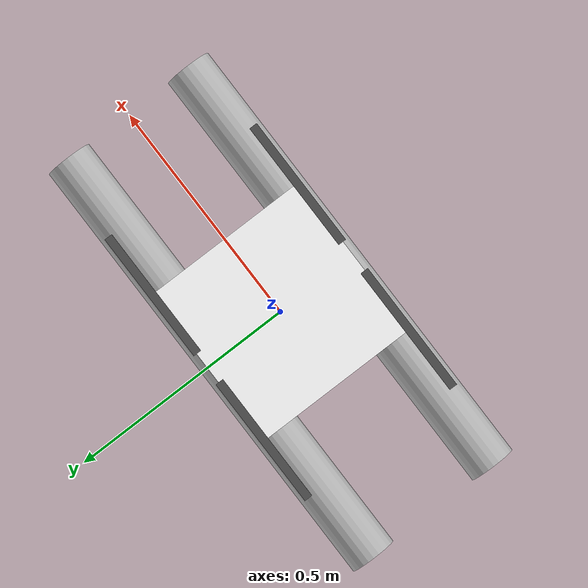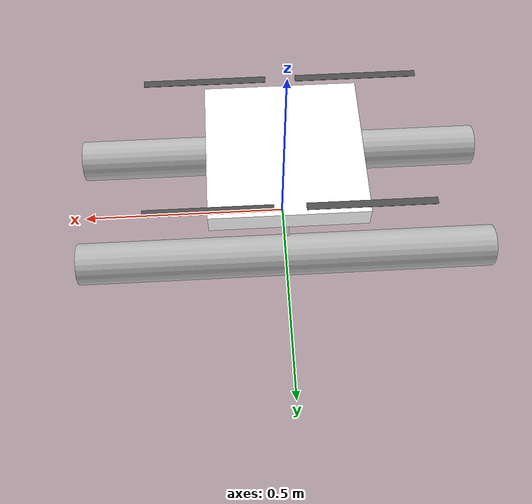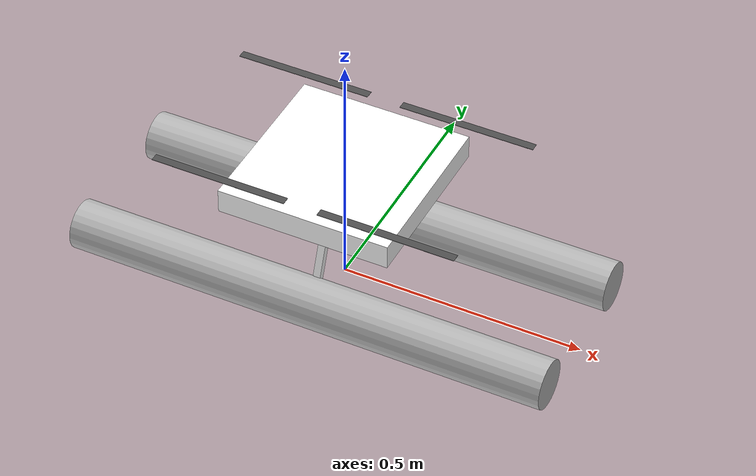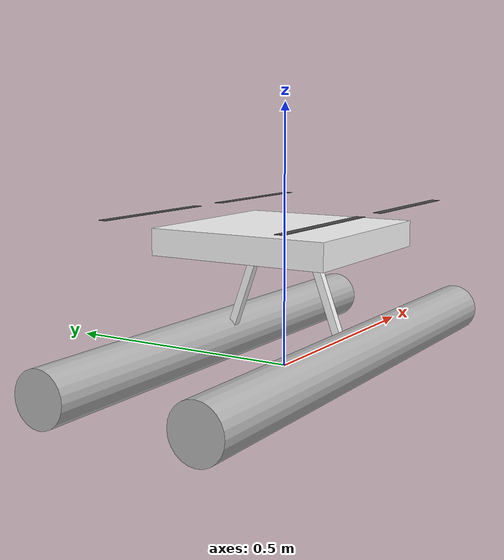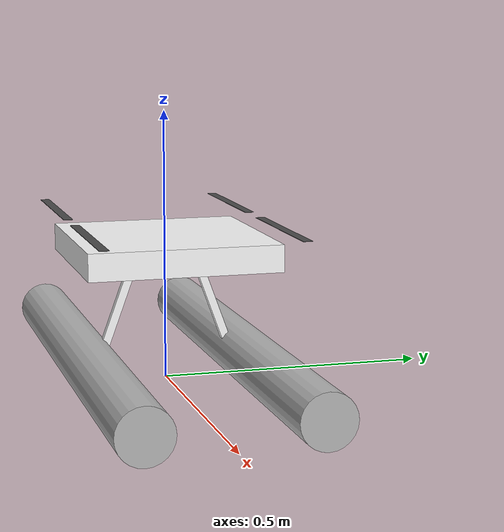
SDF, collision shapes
<?xml version="1.0" encoding="UTF-8"?>
<sdf version='1.9'>
  <model name='x500'>
    <pose>0 0 .24 0 0 0</pose>
    <self_collide>false</self_collide>
    <static>false</static>
    <link name="base_link">
      <inertial>
        <mass>3.0</mass>
        <inertia>
          <ixx>0.02166666666666667</ixx>
          <ixy>0</ixy>
          <ixz>0</ixz>
          <iyy>0.02166666666666667</iyy>
          <iyz>0</iyz>
          <izz>0.04000000000000001</izz>
        </inertia>
      </inertial>
      <gravity>true</gravity>
      <velocity_decay/>
      <visual name="base_link_visual">
        <pose>0 0 .025 0 0 3.141592654</pose>
        <geometry>
          <mesh>
            <scale>1 1 1</scale>
            <uri>model://x500_floating/meshes/NXP-HGD-CF.dae</uri>
          </mesh>
        </geometry>
      </visual>
      <visual name="5010_motor_base_0">
        <pose>0.174 0.174 .032 0 0 -.45</pose>
        <geometry>
          <mesh>
            <scale>1 1 1</scale>
            <uri>model://x500_floating/meshes/5010Base.dae</uri>
          </mesh>
        </geometry>
      </visual>
      <visual name="5010_motor_base_1">
        <pose>-0.174 0.174 .032 0 0 -.45</pose>
        <geometry>
          <mesh>
            <scale>1 1 1</scale>
            <uri>model://x500_floating/meshes/5010Base.dae</uri>
          </mesh>
        </geometry>
      </visual>
      <visual name="5010_motor_base_2">
        <pose>0.174 -0.174 .032 0 0 -.45</pose>
        <geometry>
          <mesh>
            <scale>1 1 1</scale>
            <uri>model://x500_floating/meshes/5010Base.dae</uri>
          </mesh>
        </geometry>
      </visual>
      <visual name="5010_motor_base_3">
        <pose>-0.174 -0.174 .032 0 0 -.45</pose>
        <geometry>
          <mesh>
            <scale>1 1 1</scale>
            <uri>model://x500_floating/meshes/5010Base.dae</uri>
          </mesh>
        </geometry>
      </visual>
      <visual name="NXP_FMUK66_FRONT">
        <pose>0.047 .001 .043 1 0 1.57</pose>
        <cast_shadows>false</cast_shadows>
        <geometry>
          <plane>
            <normal>0 0 1</normal>
            <size>.013 .007</size>
          </plane>
        </geometry>
        <material>
          <diffuse>1.0 1.0 1.0</diffuse>
          <specular>1.0 1.0 1.0</specular>
          <pbr>
            <metal>
              <albedo_map>model://x500_floating/materials/textures/nxp.png</albedo_map>
            </metal>
          </pbr>
        </material>
      </visual>
      <visual name="NXP_FMUK66_TOP">
        <pose>-0.023 0 .0515 0 0 -1.57</pose>
        <cast_shadows>false</cast_shadows>
        <geometry>
          <plane>
            <normal>0 0 1</normal>
            <size>.013 .007</size>
          </plane>
        </geometry>
        <material>
          <diffuse>1.0 1.0 1.0</diffuse>
          <specular>1.0 1.0 1.0</specular>
          <pbr>
            <metal>
              <albedo_map>model://x500_floating/materials/textures/nxp.png</albedo_map>
            </metal>
          </pbr>
        </material>
      </visual>
      <visual name="RDDRONE_FMUK66_TOP">
        <pose>-.03 0 .0515 0 0 -1.57</pose>
        <cast_shadows>false</cast_shadows>
        <geometry>
          <plane>
            <normal>0 0 1</normal>
            <size>.032 .0034</size>
          </plane>
        </geometry>
        <material>
          <diffuse>1.0 1.0 1.0</diffuse>
          <specular>1.0 1.0 1.0</specular>
          <pbr>
            <metal>
              <albedo_map>model://x500_floating/materials/textures/rd.png</albedo_map>
            </metal>
          </pbr>
        </material>
      </visual>
      <collision name="base_link_collision_0">
        <pose>0 0 .007 0 0 0</pose>
        <geometry>
          <box>
            <size>0.35355339059327373 0.35355339059327373 0.05</size>
          </box>
        </geometry>
        <surface>
          <contact>
            <ode>
              <min_depth>0.001</min_depth>
              <max_vel>0</max_vel>
            </ode>
          </contact>
          <friction>
            <ode/>
          </friction>
        </surface>
      </collision>
      <collision name="base_link_collision_1">
        <pose>0 -0.098 -.123 -0.35 0 0</pose>
        <geometry>
          <box>
            <size>0.015 0.015 0.21</size>
          </box>
        </geometry>
        <surface>
          <contact>
            <ode>
              <min_depth>0.001</min_depth>
              <max_vel>0</max_vel>
            </ode>
          </contact>
          <friction>
            <ode/>
          </friction>
        </surface>
      </collision>
      <collision name="base_link_collision_2">
        <pose>0 0.098 -.123 0.35 0 0</pose>
        <geometry>
          <box>
            <size>0.015 0.015 0.21</size>
          </box>
        </geometry>
        <surface>
          <contact>
            <ode>
              <min_depth>0.001</min_depth>
              <max_vel>0</max_vel>
            </ode>
          </contact>
          <friction>
            <ode/>
          </friction>
        </surface>
      </collision>
      <collision name="base_link_collision_3">
        <pose>0 -0.132 -.2195 0 0 0</pose>
        <geometry>
          <box>
            <size>0.25 0.015 0.015</size>
          </box>
        </geometry>
        <surface>
          <contact>
            <ode>
              <min_depth>0.001</min_depth>
              <max_vel>0</max_vel>
            </ode>
          </contact>
          <friction>
            <ode/>
          </friction>
        </surface>
      </collision>
      <collision name="base_link_collision_4">
        <pose>0 0.132 -.2195 0 0 0</pose>
        <geometry>
          <box>
            <size>0.25 0.015 0.015</size>
          </box>
        </geometry>
        <surface>
          <contact>
            <ode>
              <min_depth>0.001</min_depth>
              <max_vel>0</max_vel>
            </ode>
          </contact>
          <friction>
            <ode/>
          </friction>
        </surface>
      </collision>
      <sensor name="air_pressure_sensor" type="air_pressure">
        <always_on>1</always_on>
        <update_rate>50</update_rate>
        <air_pressure>
          <pressure>
            <noise type="gaussian">
              <mean>0</mean>
              <stddev>0.01</stddev>
            </noise>
          </pressure>
        </air_pressure>
      </sensor>
      <sensor name="imu_sensor" type="imu">
        <always_on>1</always_on>
        <update_rate>250</update_rate>
      </sensor>
    </link>
    <link name="buoyant_sausage_1">
      <pose>0 0.15 -0.2 0 1.57075 0</pose>
      <inertial>
        <mass>0.001</mass>
        <inertia>
          <ixx>0.02166666666666667</ixx>
          <ixy>0</ixy>
          <ixz>0</ixz>
          <iyy>0.02166666666666667</iyy>
          <iyz>0</iyz>
          <izz>0.04000000000000001</izz>
        </inertia>
        <density>240</density>
      </inertial>
      <gravity>true</gravity>
      <collision name="sausage_1_collision">
        <geometry>
          <cylinder>
            <radius>0.05</radius>
            <length>1</length>
          </cylinder>
        </geometry>
      </collision>
      <visual name="sausage_1_visual">
        <geometry>
          <cylinder>
            <radius>0.05</radius>
            <length>1</length>
          </cylinder>
        </geometry>
      </visual>
    </link>
    <joint name="sausage_1_to_drone" type="revolute">
      <parent>base_link</parent>
      <child>buoyant_sausage_1</child>
      <pose>0 0.15 -0.2 0 0 0</pose>
      <axis>
        <xyz>0 0 1</xyz>
        <limit>
          <lower>0</lower>
          <upper>0</upper>
        </limit>
        <dynamics>
          <spring_reference>0</spring_reference>
          <spring_stiffness>0</spring_stiffness>
        </dynamics>
      </axis>
    </joint>
    <link name="buoyant_sausage_2">
      <pose>0 -0.15 -0.2 0 1.57075 0</pose>
      <inertial>
        <mass>0.001</mass>
        <inertia>
          <ixx>0.02166666666666667</ixx>
          <ixy>0</ixy>
          <ixz>0</ixz>
          <iyy>0.02166666666666667</iyy>
          <iyz>0</iyz>
          <izz>0.04000000000000001</izz>
        </inertia>
        <density>240</density>
      </inertial>
      <gravity>true</gravity>
      <collision name="sausage_2_collision">
        <geometry>
          <cylinder>
            <radius>0.05</radius>
            <length>1</length>
          </cylinder>
        </geometry>
      </collision>
      <visual name="sausage_2_visual">
        <geometry>
          <cylinder>
            <radius>0.05</radius>
            <length>1</length>
          </cylinder>
        </geometry>
      </visual>
    </link>
    <joint name="sausage_2_to_drone" type="revolute">
      <parent>base_link</parent>
      <child>buoyant_sausage_2</child>
      <pose>0 -0.15 -0.2 0 0 0</pose>
      <axis>
        <xyz>0 0 1</xyz>
        <limit>
          <lower>0</lower>
          <upper>0</upper>
        </limit>
        <dynamics>
          <spring_reference>0</spring_reference>
          <spring_stiffness>0</spring_stiffness>
        </dynamics>
      </axis>
    </joint>
    <link name="rotor_0">
      <gravity>true</gravity>
      <self_collide>false</self_collide>
      <velocity_decay/>
      <pose>0.174 -0.174 0.06 0 0 0</pose>
      <inertial>
          <mass>0.016076923076923075</mass>
          <inertia>
            <ixx>3.8464910483993325e-07</ixx>
            <iyy>2.6115851691700804e-05</iyy>
            <izz>2.649858234714004e-05</izz>
          </inertia>
        </inertial>
      <visual name="rotor_0_visual">
        <pose>-0.022 -0.14638461538461536 -0.016 0 0 0</pose>
        <geometry>
          <mesh>
            <scale>0.8461538461538461 0.8461538461538461 0.8461538461538461</scale>
            <uri>model://x500_floating/meshes/1345_prop_ccw.stl</uri>
          </mesh>
        </geometry>
        <material>
          <script>
            <name>Gazebo/DarkGrey</name>
            <uri>file://media/materials/scripts/gazebo.material</uri>
          </script>
        </material>
      </visual>
      <visual name="rotor_0_visual_motor_bell">
        <pose>0 0 -.032 0 0 0</pose>
        <geometry>
          <mesh>
            <scale>1 1 1</scale>
            <uri>model://x500_floating/meshes/5010Bell.dae</uri>
          </mesh>
        </geometry>
      </visual>
      <collision name="rotor_0_collision">
        <pose>0 0 0 0 0 0 </pose>
        <geometry>
          <box>
            <size>0.2792307692307692 0.016923076923076923 0.0008461538461538462</size>
          </box>
        </geometry>
        <surface>
          <contact>
            <ode>
              <min_depth>0.001</min_depth>
              <max_vel>0</max_vel>
            </ode>
          </contact>
          <friction>
            <ode/>
          </friction>
        </surface>
      </collision>
    </link>
    <joint name="rotor_0_joint" type="revolute">
      <parent>base_link</parent>
      <child>rotor_0</child>
      <axis>
        <xyz>0 0 1</xyz>
        <limit>
          <lower>-1e+16</lower>
          <upper>1e+16</upper>
        </limit>
        <dynamics>
          <spring_reference>0</spring_reference>
          <spring_stiffness>0</spring_stiffness>
        </dynamics>
      </axis>
    </joint>
    <link name="rotor_1">
      <gravity>true</gravity>
      <self_collide>false</self_collide>
      <velocity_decay/>
      <pose>-0.174 0.174 0.06 0 0 0</pose>
      <inertial>
          <mass>0.016076923076923075</mass>
          <inertia>
            <ixx>3.8464910483993325e-07</ixx>
            <iyy>2.6115851691700804e-05</iyy>
            <izz>2.649858234714004e-05</izz>
          </inertia>
        </inertial>
      <visual name="rotor_1_visual">
        <pose>-0.022 -0.14638461538461536 -0.016 0 0 0</pose>
        <geometry>
          <mesh>
            <scale>0.8461538461538461 0.8461538461538461 0.8461538461538461</scale>
            <uri>model://x500_floating/meshes/1345_prop_ccw.stl</uri>
          </mesh>
        </geometry>
        <material>
          <script>
            <name>Gazebo/DarkGrey</name>
            <uri>file://media/materials/scripts/gazebo.material</uri>
          </script>
        </material>
      </visual>
      <visual name="rotor_1_visual_motor_top">
        <pose>0 0 -.032 0 0 0</pose>
        <geometry>
          <mesh>
            <scale>1 1 1</scale>
            <uri>model://x500_floating/meshes/5010Bell.dae</uri>
          </mesh>
        </geometry>
      </visual>
      <collision name="rotor_1_collision">
        <pose>0 0 0 0 0 0 </pose>
        <geometry>
          <box>
            <size>0.2792307692307692 0.016923076923076923 0.0008461538461538462</size>
          </box>
        </geometry>
        <surface>
          <contact>
            <ode>
              <min_depth>0.001</min_depth>
              <max_vel>0</max_vel>
            </ode>
          </contact>
          <friction>
            <ode/>
          </friction>
        </surface>
      </collision>
    </link>
    <joint name="rotor_1_joint" type="revolute">
      <parent>base_link</parent>
      <child>rotor_1</child>
      <axis>
        <xyz>0 0 1</xyz>
        <limit>
          <lower>-1e+16</lower>
          <upper>1e+16</upper>
        </limit>
        <dynamics>
          <spring_reference>0</spring_reference>
          <spring_stiffness>0</spring_stiffness>
        </dynamics>
      </axis>
    </joint>
    <link name="rotor_2">
      <gravity>true</gravity>
      <self_collide>false</self_collide>
      <velocity_decay/>
      <pose>0.174 0.174 0.06 0 0 0</pose>
      <inertial>
          <mass>0.016076923076923075</mass>
          <inertia>
            <ixx>3.8464910483993325e-07</ixx>
            <iyy>2.6115851691700804e-05</iyy>
            <izz>2.649858234714004e-05</izz>
          </inertia>
        </inertial>
      <visual name="rotor_2_visual">
        <pose>-0.022 -0.14638461538461536 -0.016 0 0 0</pose>
        <geometry>
          <mesh>
            <scale>0.8461538461538461 0.8461538461538461 0.8461538461538461</scale>
            <uri>model://x500_floating/meshes/1345_prop_cw.stl</uri>
          </mesh>
        </geometry>
        <material>
          <script>
            <name>Gazebo/DarkGrey</name>
            <uri>file://media/materials/scripts/gazebo.material</uri>
          </script>
        </material>
      </visual>
      <visual name="rotor_2_visual_motor_top">
        <pose>0 0 -.032 0 0 0</pose>
        <geometry>
          <mesh>
            <scale>1 1 1</scale>
            <uri>model://x500_floating/meshes/5010Bell.dae</uri>
          </mesh>
        </geometry>
      </visual>
      <collision name="rotor_2_collision">
        <pose>0 0 0 0 0 0 </pose>
        <geometry>
          <box>
            <size>0.2792307692307692 0.016923076923076923 0.0008461538461538462</size>
          </box>
        </geometry>
        <surface>
          <contact>
            <ode>
              <min_depth>0.001</min_depth>
              <max_vel>0</max_vel>
            </ode>
          </contact>
          <friction>
            <ode/>
          </friction>
        </surface>
      </collision>
    </link>
    <joint name="rotor_2_joint" type="revolute">
      <parent>base_link</parent>
      <child>rotor_2</child>
      <axis>
        <xyz>0 0 1</xyz>
        <limit>
          <lower>-1e+16</lower>
          <upper>1e+16</upper>
        </limit>
        <dynamics>
          <spring_reference>0</spring_reference>
          <spring_stiffness>0</spring_stiffness>
        </dynamics>
      </axis>
    </joint>
    <link name="rotor_3">
      <gravity>true</gravity>
      <self_collide>false</self_collide>
      <velocity_decay/>
      <pose>-0.174 -0.174 0.06 0 0 0</pose>
      <inertial>
          <mass>0.016076923076923075</mass>
          <inertia>
            <ixx>3.8464910483993325e-07</ixx>
            <iyy>2.6115851691700804e-05</iyy>
            <izz>2.649858234714004e-05</izz>
          </inertia>
        </inertial>
      <visual name="rotor_3_visual">
        <pose>-0.022 -0.14638461538461536 -0.016 0 0 0</pose>
        <geometry>
          <mesh>
            <scale>0.8461538461538461 0.8461538461538461 0.8461538461538461</scale>
            <uri>model://x500_floating/meshes/1345_prop_cw.stl</uri>
          </mesh>
        </geometry>
        <material>
          <script>
            <name>Gazebo/DarkGrey</name>
            <uri>file://media/materials/scripts/gazebo.material</uri>
          </script>
        </material>
      </visual>
      <visual name="rotor_3_visual_motor_top">
        <pose>0 0 -.032 0 0 0</pose>
        <geometry>
          <mesh>
            <scale>1 1 1</scale>
            <uri>model://x500_floating/meshes/5010Bell.dae</uri>
          </mesh>
        </geometry>
      </visual>
      <collision name="rotor_3_collision">
        <pose>0 0 0 0 0 0 </pose>
        <geometry>
          <box>
            <size>0.2792307692307692 0.016923076923076923 0.0008461538461538462</size>
          </box>
        </geometry>
        <surface>
          <contact>
            <ode>
              <min_depth>0.001</min_depth>
              <max_vel>0</max_vel>
            </ode>
          </contact>
          <friction>
            <ode/>
          </friction>
        </surface>
      </collision>
    </link>
    <joint name="rotor_3_joint" type="revolute">
      <parent>base_link</parent>
      <child>rotor_3</child>
      <axis>
        <xyz>0 0 1</xyz>
        <limit>
          <lower>-1e+16</lower>
          <upper>1e+16</upper>
        </limit>
        <dynamics>
          <spring_reference>0</spring_reference>
          <spring_stiffness>0</spring_stiffness>
        </dynamics>
      </axis>
    </joint>
   <plugin filename="gz-sim-multicopter-motor-model-system" name="gz::sim::systems::MulticopterMotorModel">
      <jointName>rotor_0_joint</jointName>
      <linkName>rotor_0</linkName>
      <turningDirection>ccw</turningDirection>
      <timeConstantUp>0.0125</timeConstantUp>
      <timeConstantDown>0.025</timeConstantDown>
      <maxRotVelocity>1000.0</maxRotVelocity>
      <motorConstant>8.54858e-06</motorConstant>
      <momentConstant>0.016</momentConstant>
      <commandSubTopic>command/motor_speed</commandSubTopic>
      <motorNumber>0</motorNumber>
      <rotorDragCoefficient>8.06428e-05</rotorDragCoefficient>
      <rollingMomentCoefficient>1e-06</rollingMomentCoefficient>
      <rotorVelocitySlowdownSim>10</rotorVelocitySlowdownSim>
      <motorType>velocity</motorType>
    </plugin>
    <plugin filename="gz-sim-multicopter-motor-model-system" name="gz::sim::systems::MulticopterMotorModel">
      <jointName>rotor_1_joint</jointName>
      <linkName>rotor_1</linkName>
      <turningDirection>ccw</turningDirection>
      <timeConstantUp>0.0125</timeConstantUp>
      <timeConstantDown>0.025</timeConstantDown>
      <maxRotVelocity>1000.0</maxRotVelocity>
      <motorConstant>8.54858e-06</motorConstant>
      <momentConstant>0.016</momentConstant>
      <commandSubTopic>command/motor_speed</commandSubTopic>
      <motorNumber>1</motorNumber>
      <rotorDragCoefficient>8.06428e-05</rotorDragCoefficient>
      <rollingMomentCoefficient>1e-06</rollingMomentCoefficient>
      <rotorVelocitySlowdownSim>10</rotorVelocitySlowdownSim>
      <motorType>velocity</motorType>
    </plugin>
    <plugin filename="gz-sim-multicopter-motor-model-system" name="gz::sim::systems::MulticopterMotorModel">
      <jointName>rotor_2_joint</jointName>
      <linkName>rotor_2</linkName>
      <turningDirection>cw</turningDirection>
      <timeConstantUp>0.0125</timeConstantUp>
      <timeConstantDown>0.025</timeConstantDown>
      <maxRotVelocity>1000.0</maxRotVelocity>
      <motorConstant>8.54858e-06</motorConstant>
      <momentConstant>0.016</momentConstant>
      <commandSubTopic>command/motor_speed</commandSubTopic>
      <motorNumber>2</motorNumber>
      <rotorDragCoefficient>8.06428e-05</rotorDragCoefficient>
      <rollingMomentCoefficient>1e-06</rollingMomentCoefficient>
      <rotorVelocitySlowdownSim>10</rotorVelocitySlowdownSim>
      <motorType>velocity</motorType>
    </plugin>
    <plugin filename="gz-sim-multicopter-motor-model-system" name="gz::sim::systems::MulticopterMotorModel">
      <jointName>rotor_3_joint</jointName>
      <linkName>rotor_3</linkName>
      <turningDirection>cw</turningDirection>
      <timeConstantUp>0.0125</timeConstantUp>
      <timeConstantDown>0.025</timeConstantDown>
      <maxRotVelocity>1000.0</maxRotVelocity>
      <motorConstant>8.54858e-06</motorConstant>
      <momentConstant>0.016</momentConstant>
      <commandSubTopic>command/motor_speed</commandSubTopic>
      <motorNumber>3</motorNumber>
      <rotorDragCoefficient>8.06428e-05</rotorDragCoefficient>
      <rollingMomentCoefficient>1e-06</rollingMomentCoefficient>
      <rotorVelocitySlowdownSim>10</rotorVelocitySlowdownSim>
      <motorType>velocity</motorType>
    </plugin>
    <plugin filename="libSurface.so" name="vrx::Surface">
      <link_name>base_link</link_name>
      <hull_length>0.3</hull_length>
      <hull_radius>0.05</hull_radius>
      <fluid_level>0.2</fluid_level>
      <fluid_density>997</fluid_density>
      <points>
        <point>0.15 0.15 0</point>
        <point>0 0.15 0</point>
        <point>-0.15 0.15 0</point>
      </points>
      <wavefield>
           <wave>
       	      <model>PMS</model>
       	      <cell_count>6000 6000</cell_count>
              <period>10</period>
              <number>1</number>
              <scale>1.5</scale>
              <gain>5.0</gain>
              <direction>0.0</direction>
              <angle>0.0</angle>
              <tau>0.6</tau>
              <amplitude>5.0</amplitude>
              <steepness>0.5</steepness>
           </wave>
      </wavefield>
      </plugin>
      <plugin filename="libSurface.so" name="vrx::Surface">
      <link_name>base_link</link_name>
      <hull_length>0.2</hull_length>
      <hull_radius>0.05</hull_radius>
      <fluid_level>0.3</fluid_level>
      <fluid_density>997</fluid_density>
      <points>
        <point>0.15 -0.15 0</point>
        <point>0 -0.15 0</point>
        <point>-0.15 -0.15 0</point>
      </points>
      <wavefield>
           <wave>
       	      <model>PMS</model>
       	      <cell_count>6000 6000</cell_count>
              <period>10</period>
              <number>1</number>
              <scale>1.5</scale>
              <gain>5.0</gain>
              <direction>0.0</direction>
              <angle>0.0</angle>
              <tau>0.6</tau>
              <amplitude>5.0</amplitude>
              <steepness>0.5</steepness>
           </wave>
      </wavefield>
    </plugin>
  </model>
</sdf>
